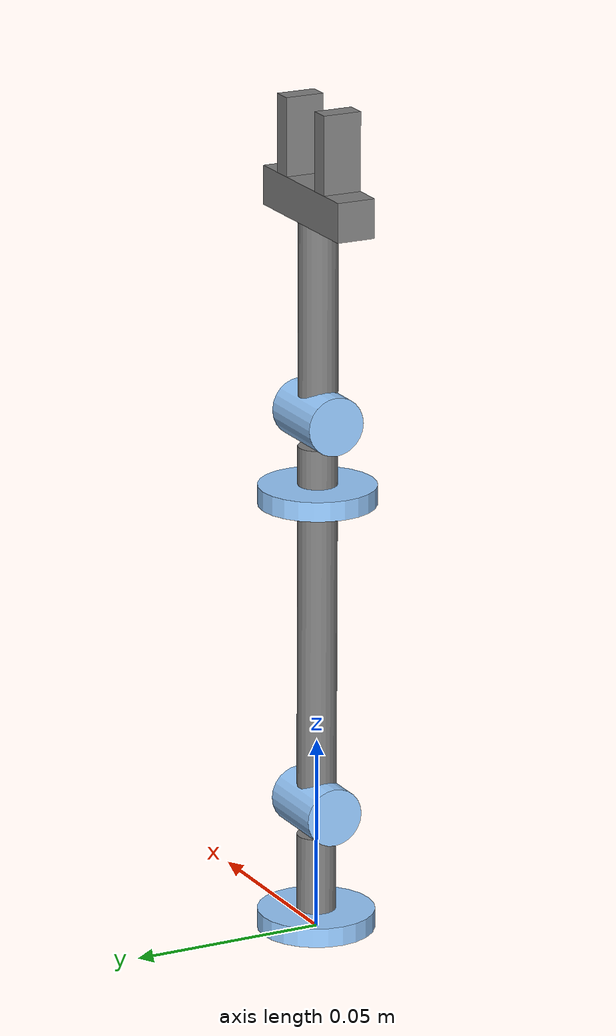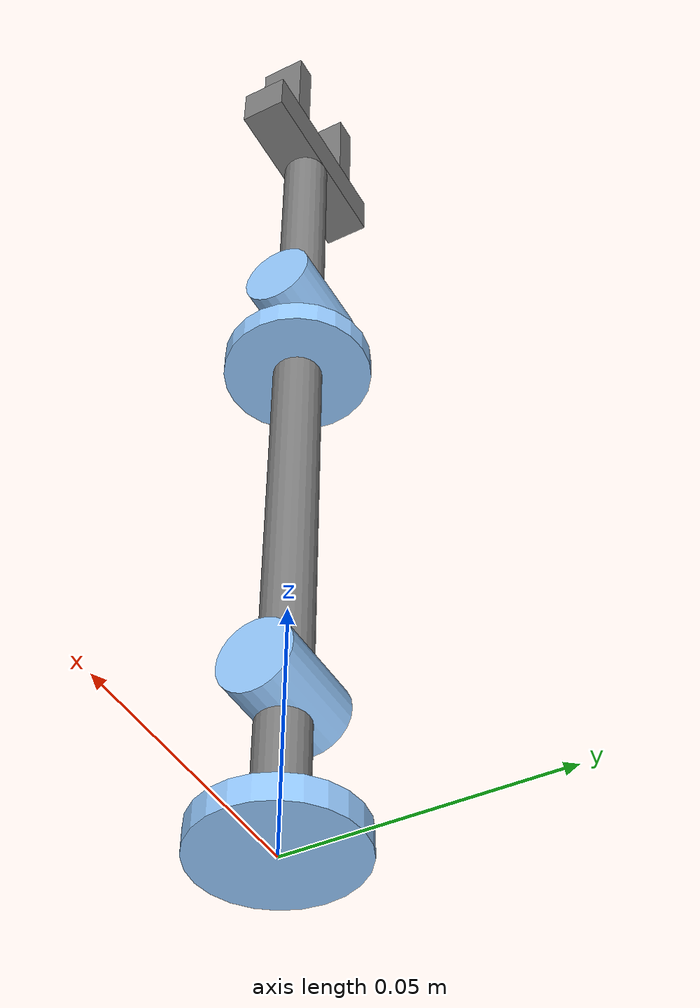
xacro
<?xml version="1.0"?>

<!-- Make the namespace of the robot-->
<robot xmlns:xacro="http://www.ros.org/wiki/xacro" name="r4_arm">
    <!--Define constants-->

    <xacro:property name="M_PI" value="3.14159"/>

    <!-- Constants for the robotic arm (masses in kg, lengths in m) -->

    <xacro:property name="max_effort" value="100" />
    <xacro:property name="max_velocity" value="0.5" />

    <xacro:property name="damping_1" value="0.003" />
    <xacro:property name="damping_2" value="0.10" />
    <xacro:property name="damping_3" value="0.003" />
    <xacro:property name="damping_4" value="0.05" />

    <!-- base_link -->
    <xacro:property name="length_0" value="0.005" />
    <xacro:property name="radius_0" value="0.015" />
    <xacro:property name="mass_0" value="0.200" />

    <!-- joint_1 -->

    <!-- link_1 -->
    <xacro:property name="length_1" value="0.020" />
    <xacro:property name="radius_1" value="0.005" />
    <xacro:property name="mass_1" value="0.100" />

    <!-- joint_j2 -->

    <!-- link_j2 -->
    <xacro:property name="length_j2" value="0.020" />
    <xacro:property name="radius_j2" value="0.0075" />
    <xacro:property name="mass_j2" value="0.020" />

    <!-- joint_2 -->

    <!-- link_2 -->
    <xacro:property name="length_2" value="0.080" />
    <xacro:property name="radius_2" value="0.005" />
    <xacro:property name="mass_2" value="0.200" />

    <!-- joint_j3 -->

    <!-- link_j3 -->
    <xacro:property name="length_j3" value="0.005" />
    <xacro:property name="radius_j3" value="0.015" />
    <xacro:property name="mass_j3" value="0.020" />

    <!-- joint_3 -->

    <!-- link_3 -->
    <xacro:property name="length_4" value="0.010" />
    <xacro:property name="radius_4" value="0.005" />
    <xacro:property name="mass_3" value="0.100" />

    <!-- joint_j4 -->

    <!-- link_j4 -->
    <xacro:property name="radius_j4" value="0.0075" />
    <xacro:property name="length_j4" value="0.020" />
    <xacro:property name="mass_j4" value="0.020" />

    <!-- joint_4 -->

    <!-- link_4 -->
    <xacro:property name="length_5" value="0.050" />
    <xacro:property name="radius_5" value="0.005" />
    <xacro:property name="mass_4" value="0.150" />

    <!-- EE -->
    <xacro:property name="base_EE_1" value="0.01" />
    <xacro:property name="length_EE_1" value="0.04" />
    <xacro:property name="length_EE_2" value="0.02" />
    <xacro:property name="mass_EE1" value="0.030" />
    <xacro:property name="mass_EE21" value="0.010" />
    <xacro:property name="mass_EE22" value="0.010" />

    <!--Define Rviz colors-->
    <material name="Black">
        <color rgba="0.0 0.0 0.0 1.0"/>
    </material>
    <material name="Red">
        <color rgba="0.8 0.0 0.0 1.0"/>
    </material>
    <material name="Blue">
        <color rgba="0.0 0.0 1.0 1.0"/>
    </material>
    <material name="LightBlue">
        <color rgba="0.589 0.793 1.0 1.0"/>
    </material>
    <material name="Grey">
        <color rgba="0.5 0.5 0.5 1.0"/>
    </material>
    <material name="White">
        <color rgba="1.0 1.0 1.0 1.0"/>
    </material>

    <!-- macros for inertia -->

    <!-- ref: https://en.wikipedia.org/wiki/List_of_moments_of_inertia#List_of_3D_inertia_tensors -->

    <xacro:macro name="cylinder_inertial_block" params="mass length radius">
      <inertial>
        <origin xyz="0 0 ${length/2}" rpy="0 0 0"/>
        <mass value="${mass}"/>
        <inertia
            ixx="${mass / 12.0 * (3*radius*radius+length*length)}" ixy="0.0" ixz="0.0"
            iyy="${mass / 12.0 * (3*radius*radius+length*length)}" iyz="0.0"
            izz="${mass / 2.0 * (radius*radius)}" />
      </inertial>
    </xacro:macro>

    <xacro:macro name="box_inertial_block" params="mass x y z">
      <inertial>
        <origin xyz="0 0 ${z/2}" rpy="0 0 0"/>
        <mass value="${mass}"/>
        <inertia
            ixx="${mass / 12.0 * (y*y+z*z)}" ixy="0.0" ixz="0.0"
            iyy="${mass / 12.0 * (x*x+z*z)}" iyz="0.0"
            izz="${mass / 12.0 * (x*x+y*y)}" />
      </inertial>
    </xacro:macro>

    <!-- macros for transmission -->
    <xacro:macro name="transmission_block" params="joint_name">
	  <transmission name="tran1">
	    <type>transmission_interface/SimpleTransmission</type>
	    <joint name="${joint_name}">
          <!-- Position/Velocity/Effort|JointInterface -->
	      <hardwareInterface>hardware_interface/EffortJointInterface</hardwareInterface>
	    </joint>
	    <actuator name="motor_${joint_name}">
	      <hardwareInterface>hardware_interface/EffortJointInterface</hardwareInterface>
	      <mechanicalReduction>1</mechanicalReduction>
	    </actuator>
	  </transmission>
    </xacro:macro>

    <!--Define Gazebo colors-->
    <xacro:macro name="gazebo_grey_link_color_block" params="link_name">
    <gazebo reference="${link_name}">
    <visual>
      <material>
        <ambient>0.5 0.5 0.5 1.0</ambient>
        <diffuse>0.56666695 0.56666695 0.56666695 1.0</diffuse>
        <specular>0.6000003 0.6000003 0.6000003 1.0</specular>
      </material>
    </visual>
    </gazebo>
    </xacro:macro>

    <xacro:macro name="gazebo_blue_link_color_block" params="link_name">
    <gazebo reference="${link_name}">
    <visual>
      <material>
	<ambient>0.589 0.793 1.0 1.0</ambient>
	<diffuse>0.56666695 0.56666695 0.56666695 1.0</diffuse>
	<specular>0.6000003 0.6000003 0.6000003 1.0</specular>
      </material>
    </visual>
    </gazebo>
    </xacro:macro>

    <link name="world"/>

    <joint name="world_joint" type="fixed">
        <origin xyz="0.0 0.0 0.0" rpy="0.0 0.0 0.0"/>
        <parent link="world"/>
        <child link="base_link"/>
    </joint>

    <link name="base_link">
        <xacro:cylinder_inertial_block mass="${mass_0}" length="${length_0}" radius="${radius_0}"/>
        <visual>
            <origin xyz="0.0 0.0 ${length_0/2.0}" rpy="0.0 0.0 0.0"/>
            <geometry>
                <cylinder radius="${radius_0}" length="${length_0}"/>
            </geometry>
            <material name="LightBlue"/>
        </visual>

        <collision>
            <origin xyz="0.0 0.0 ${length_0/2.0}" rpy="0.0 0.0 0.0"/>
            <geometry>
                <cylinder radius="${radius_0}" length="${length_0}"/>
            </geometry>>
        </collision>
    </link>

    <xacro:gazebo_blue_link_color_block link_name="base_link"/>

    <joint name="joint_1" type="revolute">
        <origin xyz="0.0 0.0 ${length_0}" rpy="0.0 0.0 0.0"/>
        <parent link="base_link"/>
        <child link="link_1"/>
        <axis xyz="0.0 0.0 1"/>
        <dynamics damping="${damping_1}"/>
        <limit lower="-1.571" upper="1.571" effort="${max_effort}" velocity="${max_velocity}"/>
    </joint>

    <!--link_1-->
    <link name="link_1">
        <xacro:cylinder_inertial_block mass="${mass_1}" length="${length_1}" radius="${radius_1}"/>
        <visual>
            <origin xyz="0.0 0.0 ${length_1/2.0}" rpy="0.0 0.0 0.0"/>
            <geometry>
                <cylinder radius="${radius_1}" length="${length_1}"/>
            </geometry>
            <material name="Grey"/>
        </visual>

        <collision>
            <origin xyz="0.0 0.0 ${length_1/2.0}" rpy="0.0 0.0 0.0"/>
            <geometry>
                <cylinder radius="${radius_1}" length="${length_1}"/>
            </geometry>>
        </collision>
    </link>

    <xacro:gazebo_grey_link_color_block link_name="link_1"/>

    <link name="link_j2">
        <xacro:cylinder_inertial_block mass="${mass_j2}" length="${length_j2}" radius="${radius_j2}"/>
        <visual>
            <origin xyz="0.0 0.0 ${length_j2/2.0}" rpy="0.0 0.0 0.0"/>
            <geometry>
                <cylinder radius="${radius_j2}" length="${length_j2}"/>
            </geometry>
            <material name="LightBlue"/>
        </visual>

        <collision>
            <origin xyz="0.0 0.0 ${length_j2/2.0}" rpy="0.0 0.0 0.0"/>
            <geometry>
                <cylinder radius="${radius_j2}" length="${length_j2}"/>
            </geometry>
        </collision>

    </link>

    <xacro:gazebo_blue_link_color_block link_name="link_j2"/>

    <joint name="joint_j2" type="fixed">
        <origin xyz="${-length_j2/2.0} 0.0 ${length_1+radius_j2}" rpy="0.0 ${M_PI/2.0} 0.0"/>
        <parent link="link_1"/>
        <child link="link_j2"/>
    </joint>

    <gazebo reference="joint_j2">
        <disableFixedJointLumping>true</disableFixedJointLumping>
        <preserveFixedJoint>true</preserveFixedJoint>
    </gazebo>

    <joint name="joint_2" type="revolute">
        <origin xyz="0.0 0.0 ${length_1+radius_j2}" rpy="0.0 0.0 0.0"/>
        <parent link="link_1"/>
        <child link="link_2"/>
        <axis xyz="1.0 0.0 0.0"/>
        <dynamics damping="${damping_2}"/> <!-- friction="1.0" ??? -->
        <limit lower="-1.571" upper="1.571" effort="${max_effort}" velocity="${max_velocity}"/>
    </joint>

    <!--link_2-->
    <link name="link_2">
        <xacro:cylinder_inertial_block mass="${mass_2}" length="${length_2}" radius="${radius_2}"/>
        <visual>
            <origin xyz="0.0 0.0 ${length_2/2.0}" rpy="0.0 0.0 0.0"/>
            <geometry>
                <cylinder radius="${radius_2}" length="${length_2}"/>
            </geometry>
            <material name="Grey"/>
        </visual>

        <collision>
            <origin xyz="0.0 0.0 ${length_2/2.0}" rpy="0.0 0.0 0.0"/>
            <geometry>
                <cylinder radius="${radius_2}" length="${length_2}"/>
            </geometry>>
        </collision>
    </link>

    <xacro:gazebo_grey_link_color_block link_name="link_2"/>

    <link name="link_j3">
        <xacro:cylinder_inertial_block mass="${mass_j3}" length="${length_j3}" radius="${radius_j3}"/>
        <visual>
            <origin xyz="0.0 0.0 ${length_j3/2.0}" rpy="0.0 0.0 0.0"/>
            <geometry>
                <cylinder radius="${radius_j3}" length="${length_j3}"/>
            </geometry>
            <material name="LightBlue"/>
        </visual>

        <collision>
            <origin xyz="0.0 0.0 ${length_j3/2.0}" rpy="0.0 0.0 0.0"/>
            <geometry>
                <cylinder radius="${radius_j3}" length="${length_j3}"/>
            </geometry>
        </collision>
    </link>

    <xacro:gazebo_blue_link_color_block link_name="link_j3"/>

    <joint name="joint_j3" type="fixed">
        <origin xyz="0.0 0.0 ${length_2}" rpy="0.0 0.0 0.0"/>
        <parent link="link_2"/>
        <child link="link_j3"/>
    </joint>

   <gazebo reference="joint_j3">
        <disableFixedJointLumping>true</disableFixedJointLumping>
        <preserveFixedJoint>true</preserveFixedJoint>
    </gazebo>

    <joint name="joint_3" type="revolute">
        <origin xyz="0.0 0.0 ${length_2+length_j3}" rpy="0.0 0.0 0.0"/>
        <parent link="link_2"/>
        <child link="link_3"/>
        <axis xyz="0.0 0.0 1.0"/>
        <dynamics damping="${damping_3}"/>
        <limit lower="-1.571" upper="1.571" effort="${max_effort}" velocity="${max_velocity}"/>
    </joint>

    <!--link_3-->
    <link name="link_3">
        <xacro:cylinder_inertial_block mass="${mass_3}" length="${length_4}" radius="${radius_4}"/>
        <visual>
            <origin xyz="0.0 0.0 ${length_4/2.0}" rpy="0.0 0.0 0.0"/>
            <geometry>
                <cylinder radius="${radius_4}" length="${length_4}"/>
            </geometry>
            <material name="Grey"/>
        </visual>

        <collision>
            <origin xyz="0.0 0.0 ${length_4/2.0}" rpy="0.0 0.0 0.0"/>
            <geometry>
                <cylinder radius="${radius_4}" length="${length_4}"/>
            </geometry>>
        </collision>
    </link>

    <xacro:gazebo_grey_link_color_block link_name="link_3"/>

    <link name="link_j4">
        <xacro:cylinder_inertial_block mass="${mass_j4}" length="${length_j4}" radius="${radius_j4}"/>
        <visual>
            <origin xyz="0.0 0.0 ${length_j4/2.0}" rpy="0.0 0.0 0.0"/>
            <geometry>
                <cylinder radius="${radius_j4}" length="${length_j4}"/>
            </geometry>
            <material name="LightBlue"/>
        </visual>

        <collision>
            <origin xyz="0.0 0.0 ${length_j4/2.0}" rpy="0.0 0.0 0.0"/>
            <geometry>
                <cylinder radius="${radius_j4}" length="${length_j4}"/>
            </geometry>
        </collision>

    </link>

    <xacro:gazebo_blue_link_color_block link_name="link_j4"/>

    <joint name="joint_j4" type="fixed">
        <origin xyz="${-length_j4/2} 0.0 ${length_4+radius_j4}" rpy="0.0 ${M_PI/2.0} 0.0"/>
        <parent link="link_3"/>
        <child link="link_j4"/>
    </joint>

    <gazebo reference="joint_j4">
        <disableFixedJointLumping>true</disableFixedJointLumping>
        <preserveFixedJoint>true</preserveFixedJoint>
    </gazebo>

    <joint name="joint_4" type="revolute">
        <origin xyz="0.0 0.0 ${length_4+radius_j4}" rpy="0.0 0.0 0.0"/>
        <parent link="link_3"/>
        <child link="link_4"/>
        <axis xyz="1.0 0.0 0.0"/>
        <dynamics damping="${damping_4}"/>
        <limit lower="-1.571" upper="1.571" effort="${max_effort}" velocity="${max_velocity}"/>
    </joint>

    <!--link_4-->
    <link name="link_4">
        <xacro:cylinder_inertial_block mass="${mass_4}" length="${length_5}" radius="${radius_5}"/>
        <visual>
            <origin xyz="0.0 0.0 ${length_5/2.0}" rpy="0.0 0.0 0.0"/>
            <geometry>
                <cylinder radius="${radius_5}" length="${length_5}"/>
            </geometry>
            <material name="Grey"/>
        </visual>

        <collision>
            <origin xyz="0.0 0.0 ${length_5/2.0}" rpy="0.0 0.0 0.0"/>
            <geometry>
                <cylinder radius="${radius_5}" length="${length_5}"/>
            </geometry>
        </collision>
    </link>

    <xacro:gazebo_grey_link_color_block link_name="link_4"/>

    <joint name="EE_joint_1" type="fixed">
        <origin xyz="${-length_EE_1/2.0} 0.0 ${length_5+base_EE_1/2.0}" rpy="0.0 ${M_PI/2.0} 0.0"/>
        <parent link="link_4"/>
        <child link="EE_part_1"/>
    </joint>

    <gazebo reference="EE_joint_1">
        <disableFixedJointLumping>true</disableFixedJointLumping>
        <preserveFixedJoint>true</preserveFixedJoint>
    </gazebo>

    <!--EE_part_1-->
    <link name="EE_part_1">
        <xacro:box_inertial_block mass="${mass_EE1}" x="${base_EE_1}" y="${base_EE_1}" z="${length_EE_1}"/>
        <visual>
            <origin xyz="0.0 0.0 ${length_EE_1/2.0}" rpy="0.0 0.0 0.0"/>
            <geometry>
                <box size="${base_EE_1} ${base_EE_1} ${length_EE_1}"/>
            </geometry>
            <material name="Grey"/>
        </visual>

        <collision>
            <origin xyz="0.0 0.0 ${length_EE_1/2.0}" rpy="0.0 0.0 0.0"/>
            <geometry>
                <box size="${base_EE_1} ${base_EE_1} ${length_EE_1}"/>
            </geometry>
        </collision>
    </link>

    <xacro:gazebo_grey_link_color_block link_name="EE_part_1"/>

    <joint name="EE_joint_21" type="fixed">
        <origin xyz="${-base_EE_1/2} 0.0 ${length_EE_1/4}" rpy="0.0 ${-M_PI/2.0} 0.0"/>
        <parent link="EE_part_1"/>
        <child link="EE_part_21"/>
    </joint>

    <gazebo reference="EE_joint_21">
        <disableFixedJointLumping>true</disableFixedJointLumping>
        <preserveFixedJoint>true</preserveFixedJoint>
    </gazebo>

    <joint name="EE_joint_22" type="fixed">
        <origin xyz="${-base_EE_1/2} 0.0 ${3*length_EE_1/4}" rpy="0.0 ${-M_PI/2.0} 0.0"/>
        <parent link="EE_part_1"/>
        <child link="EE_part_22"/>
    </joint>

    <gazebo reference="EE_joint_22">
        <disableFixedJointLumping>true</disableFixedJointLumping>
        <preserveFixedJoint>true</preserveFixedJoint>
    </gazebo>
    <!--EE_part_2-->
    <link name="EE_part_21">
        <xacro:box_inertial_block mass="${mass_EE21}" x="${base_EE_1/2}" y="${base_EE_1}" z="${length_EE_2}"/>
        <visual>
            <origin xyz="0.0 0.0 ${length_EE_2/2.0}" rpy="0.0 0.0 0.0"/>
            <geometry>
                <box size="${base_EE_1/2} ${base_EE_1} ${length_EE_2}"/>
            </geometry>
            <material name="Grey"/>
        </visual>

        <collision>
            <origin xyz="0.0 0.0 ${length_EE_2/2.0}" rpy="0.0 0.0 0.0"/>
            <geometry>
                <box size="${base_EE_1/2} ${base_EE_1} ${length_EE_2}"/>
            </geometry>
        </collision>
    </link>

    <xacro:gazebo_grey_link_color_block link_name="EE_part_21"/>

    <link name="EE_part_22">
        <xacro:box_inertial_block mass="${mass_EE22}" x="${base_EE_1/2}" y="${base_EE_1}" z="${length_EE_2}"/>
        <visual>
            <origin xyz="0.0 0.0 ${length_EE_2/2.0}" rpy="0.0 0.0 0.0"/>
            <geometry>
                <box size="${base_EE_1/2} ${base_EE_1} ${length_EE_2}"/>
            </geometry>
            <material name="Grey"/>
        </visual>

        <collision>
            <origin xyz="0.0 0.0 ${length_EE_2/2.0}" rpy="0.0 0.0 0.0"/>
            <geometry>
                <box size="${base_EE_1/2} ${base_EE_1} ${length_EE_2}"/>
            </geometry>
        </collision>
    </link>

    <xacro:gazebo_grey_link_color_block link_name="EE_part_22"/>

    <!-- EE tip link -->

    <joint name="EE_joint_tip" type="fixed">
        <origin xyz="${-base_EE_1/2-length_EE_2} 0.0 ${length_EE_1/2}" rpy="0.0 ${-M_PI/2.0} 0.0"/>
        <parent link="EE_part_1"/>
        <child link="EE_tip"/>
    </joint>

    <link name="EE_tip">
        <xacro:box_inertial_block mass="0.01" x="0.01" y="0.01" z="0.01"/>
    </link>

    <!-- gazebo reference="EE_tip" / -->
    <!-- xacro:gazebo_grey_link_color_block link_name="EE_tip"/ -->

    <gazebo reference="EE_joint_tip">
        <disableFixedJointLumping>true</disableFixedJointLumping>
        <preserveFixedJoint>true</preserveFixedJoint>
    </gazebo>

    <!-- Transmissions for ros control -->
    <xacro:transmission_block joint_name="joint_1"/>
    <xacro:transmission_block joint_name="joint_2"/>
    <xacro:transmission_block joint_name="joint_3"/>
    <xacro:transmission_block joint_name="joint_4"/>

    <!-- ros_control plugin -->
    <gazebo>
        <plugin name="gazebo_ros_control" filename="libgazebo_ros_control.so">
        <robotNamespace>/r4_arm</robotNamespace>
        </plugin>
    </gazebo>

</robot>
